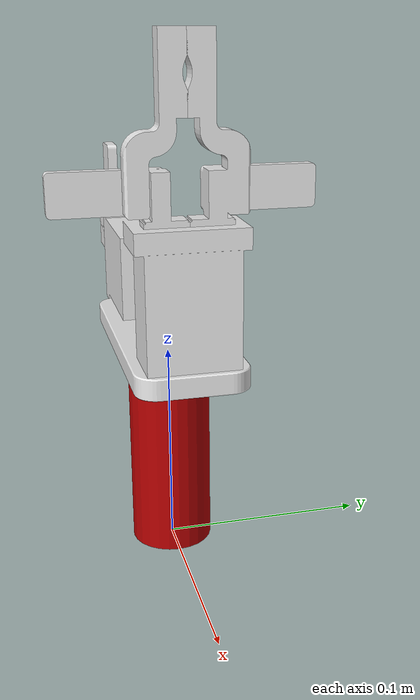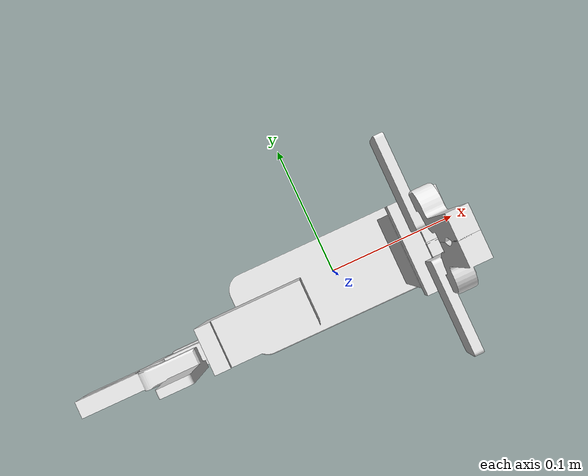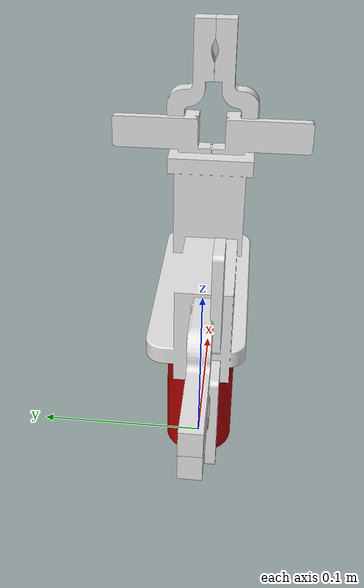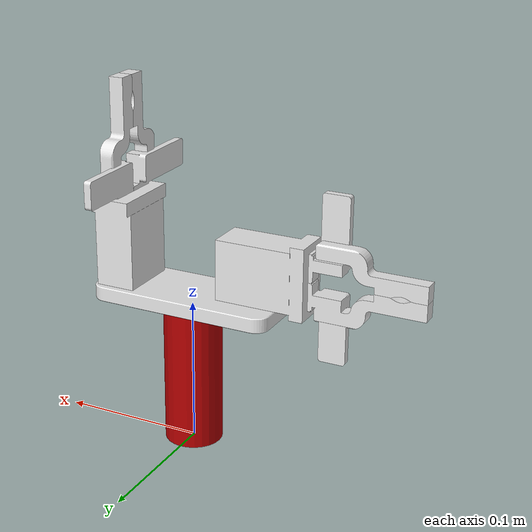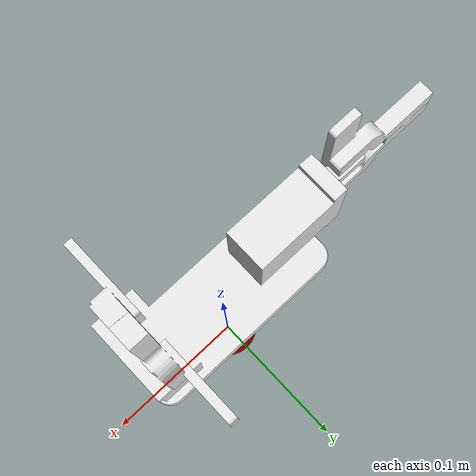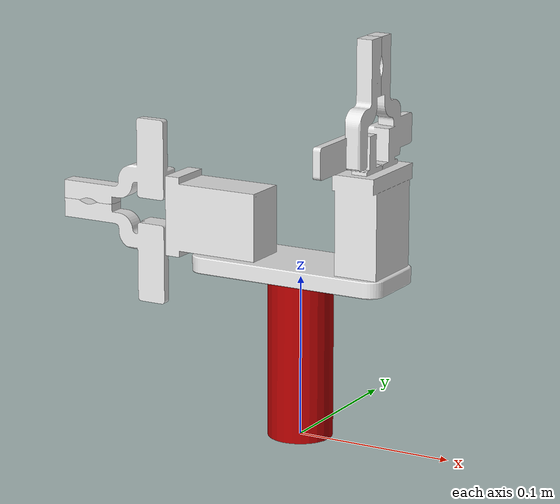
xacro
<?xml version="1.0" ?>
<robot name="za6" xmlns:xacro="http://ros.org/wiki/xacro">
  <xacro:include filename="$(find za6_tools)/urdf/pivot_gripper_macro.xacro"/>
  <xacro:pivot_gripper_macro prefix=""/>

  <material name="main_Red">
    <color rgba="0.7 0.0 0.0 0.99"/>
  </material>

  <link name="world"/>
  <link name="base_link">
    <visual>
      <geometry>
        <cylinder length="0.1" radius="0.02"/>
      </geometry>
      <origin rpy="0 0 0" xyz="0 0 0.05"/>
      <material name="main_Red"/>
    </visual>
  </link>

  <joint name="world-base" type="fixed">
    <parent link="world"/>
    <child link="base_link"/>
  </joint>

  <joint name="base-adapter" type="fixed">
    <parent link="base_link"/>
    <child link="za6_pivot_adapter"/>
    <origin rpy="0 0 0" xyz="0 0 0.1"/>
  </joint>

</robot>

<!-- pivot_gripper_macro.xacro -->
<robot xmlns:xacro="http://www.ros.org/wiki/xacro">
  <xacro:macro name="pivot_gripper_macro" params="prefix">

    <material name="${prefix}Aluminium">
      <color rgba="0.9 0.9 0.9 0.99"/>
    </material>

    <!-- link list -->
    <link name="${prefix}za6_pivot_adapter">
    </link>

    <link name="${prefix}pivot_gripper_base">
      <visual>
        <geometry>
          <mesh filename="package://za6_tools/meshes/pivot_gripper_base.stl"/>
        </geometry>
        <origin rpy="0.0 0.0 0.0" xyz="0 0 0"/>
        <material name="${prefix}Aluminium">
        </material>
      </visual>
      <collision>
        <geometry>
          <mesh filename="package://za6_tools/meshes/pivot_gripper_base_collision.stl"/>
        </geometry>
        <origin rpy="0.0 0.0 0.0" xyz="0 0 0"/>
      </collision>
      <inertial>
        <mass value="100"/>
        <inertia ixx="1.0" ixy="0.0" ixz="0.0" iyy="1.0" iyz="0.0" izz="1.0"/>
      </inertial>
    </link>

    <link name="${prefix}pivot_gripper_finger_left1">
      <visual>
        <geometry>
          <mesh filename="package://za6_tools/meshes/pivot_gripper_finger_left.stl"/>
        </geometry>
        <origin xyz="0 0 0" rpy="0 0 0"/>
        <material name="${prefix}Aluminium"/>
      </visual>
      <collision>
        <geometry>
          <mesh filename="package://za6_tools/meshes/pivot_gripper_finger_left_collision.stl"/>
        </geometry>
        <origin xyz="0 0 0" rpy="0 0 0.0"/>
      </collision>
    </link>

    <link name="${prefix}pivot_gripper_finger_right1">
      <visual>
        <geometry>
          <mesh filename="package://za6_tools/meshes/pivot_gripper_finger_right.stl"/>
        </geometry>
        <origin xyz="0 0 0" rpy="0 0 0"/>
        <material name="${prefix}Aluminium"/>
      </visual>
      <collision>
        <geometry>
          <mesh filename="package://za6_tools/meshes/pivot_gripper_finger_right_collision.stl"/>
        </geometry>
        <origin xyz="0 0 0" rpy="0 0 0.0"/>
      </collision>
    </link>

    <link name="${prefix}pivot_gripper_finger_left2">
      <visual>
        <geometry>
          <mesh filename="package://za6_tools/meshes/pivot_gripper_finger_left.stl"/>
        </geometry>
        <origin xyz="0 0 0" rpy="0 0 0"/>
        <material name="${prefix}Aluminium"/>
      </visual>
      <collision>
        <geometry>
          <mesh filename="package://za6_tools/meshes/pivot_gripper_finger_left_collision.stl"/>
        </geometry>
        <origin xyz="0 0 0" rpy="0 0 0.0"/>
      </collision>
    </link>

    <link name="${prefix}pivot_gripper_finger_right2">
      <visual>
        <geometry>
          <mesh filename="package://za6_tools/meshes/pivot_gripper_finger_right.stl"/>
        </geometry>
        <origin xyz="0 0 0" rpy="0 0 0"/>
        <material name="${prefix}Aluminium"/>
      </visual>
      <collision>
        <geometry>
          <mesh filename="package://za6_tools/meshes/pivot_gripper_finger_right_collision.stl"/>
        </geometry>
        <origin xyz="0 0 0" rpy="0 0 0.0"/>
      </collision>
    </link>

    <!-- joint list -->
    <joint name="${prefix}adapter-pivot_gripper_base" type="fixed">
      <parent link="${prefix}za6_pivot_adapter"/>
      <child link="${prefix}pivot_gripper_base"/>
      <axis xyz="0 0 0"/>
      <origin rpy="0.0 0.0 0.0" xyz="0 0 0"/>
    </joint>

    <joint name="${prefix}pivot_gripper_base-pivot_gripper_finger_left1" type="fixed">
      <parent link="${prefix}pivot_gripper_base" />
      <child link="${prefix}pivot_gripper_finger_left1" />
      <axis xyz="0 0 1"/>
      <origin xyz="0.048 0 0.0723" rpy="0 0 -${pi/2.0}" />
    </joint>

    <joint name="${prefix}pivot_gripper_base-pivot_gripper_finger_right1" type="fixed">
      <parent link="${prefix}pivot_gripper_base" />
      <child link="${prefix}pivot_gripper_finger_right1" />
      <axis xyz="0 0 1"/>
      <origin xyz="0.048 0 0.0723" rpy="0 0 -${pi/2.0}" />
    </joint>

    <joint name="${prefix}pivot_gripper_base-pivot_gripper_finger_left2" type="fixed">
      <parent link="${prefix}pivot_gripper_base" />
      <child link="${prefix}pivot_gripper_finger_left2" />
      <axis xyz="0 0 1"/>
      <origin xyz="-0.0843 -0.0053 0.031" rpy="0 -${pi/2.0} 0" />
    </joint>

    <joint name="${prefix}pivot_gripper_base-pivot_gripper_finger_right2" type="fixed">
      <parent link="${prefix}pivot_gripper_base" />
      <child link="${prefix}pivot_gripper_finger_right2" />
      <axis xyz="0 0 1"/>
      <origin xyz="-0.0843 -0.0053 0.031" rpy="0 -${pi/2.0} 0" />
    </joint>

  </xacro:macro>
</robot>
